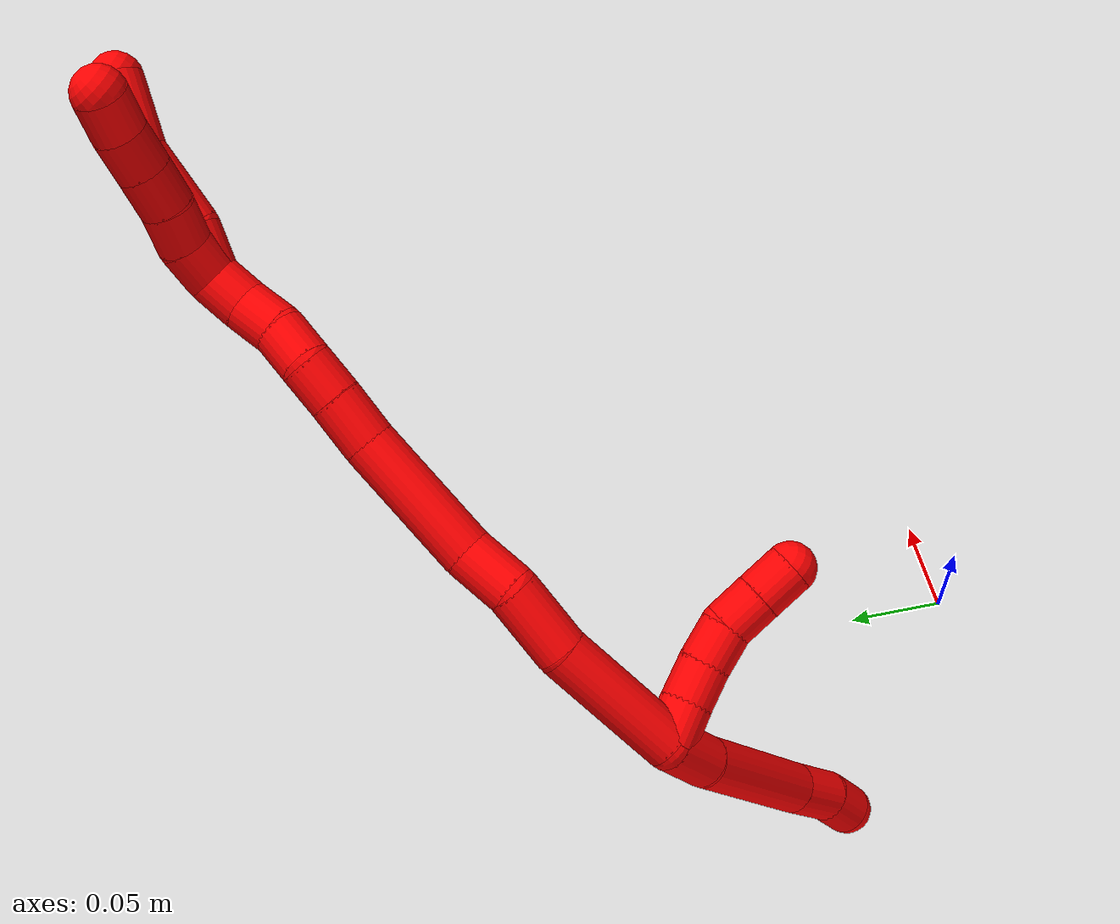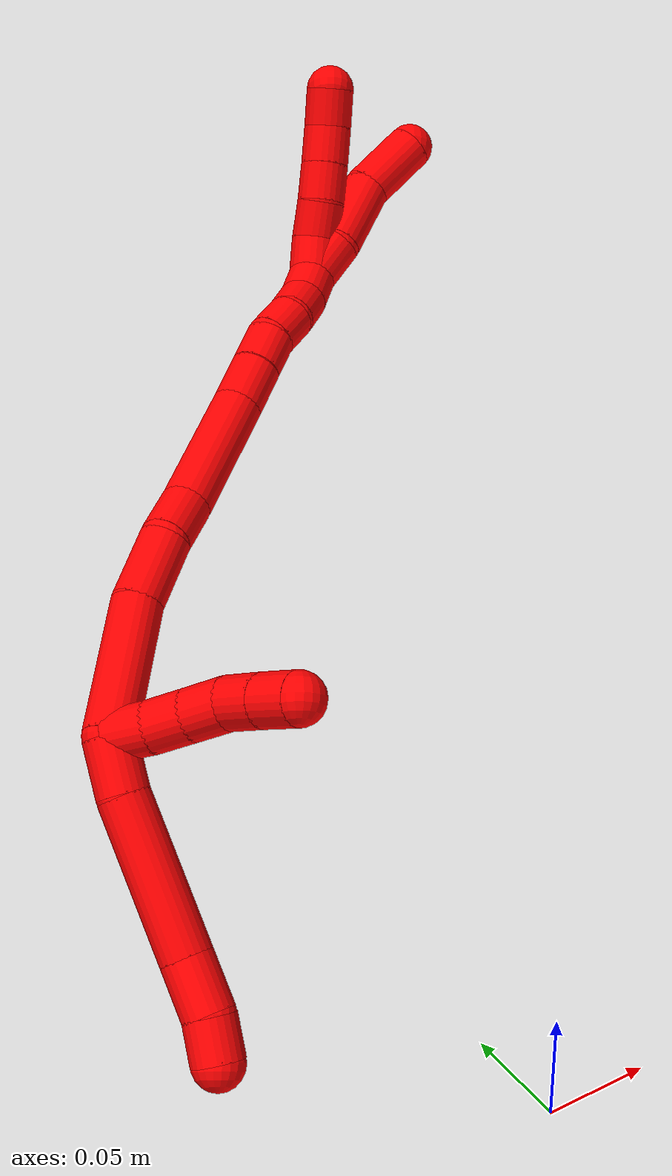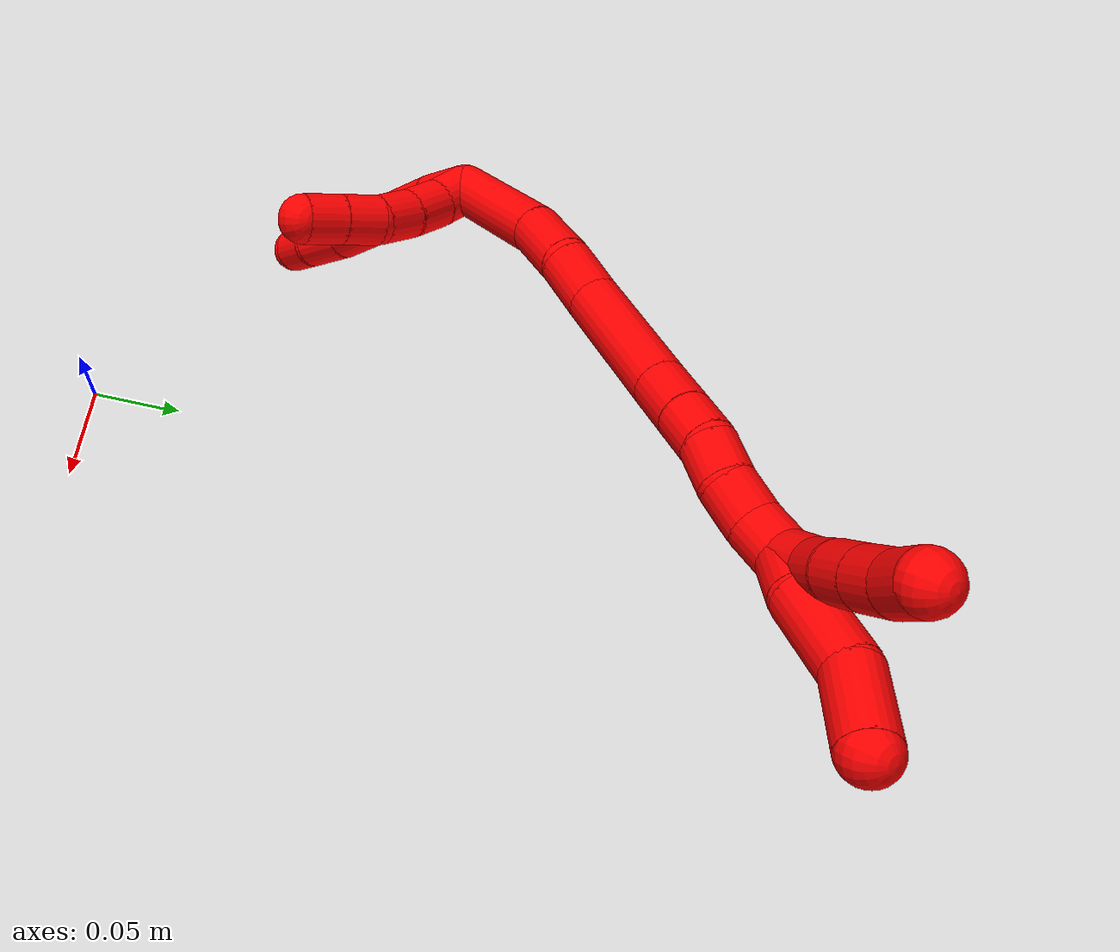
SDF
<sdf version="1.7">
 <world name="default">
  <model name="2">
   <static>0</static>
   <link name="2">
    <collision name="collision-cylinder-e_1_2_8">
     <pose>0.003269 0.001937 -0.01307 -2.99444 0.242573 -2.0538</pose>
     <geometry><cylinder><radius>0.0125</radius><length>0.027223</length></cylinder></geometry>
     <surface>
      <friction><ode><mu>1.16</mu><mu2>1.16</mu2><slip1>0</slip1><slip2>0</slip2></ode></friction>
      <contact><ode><kp>1e+06</kp><kd>1</kd><max_vel>0</max_vel><min_depth>0.001</min_depth></ode></contact>
     </surface>
    </collision>
    <visual name="visual-cylinder-e_1_2_8">
     <pose>0.003269 0.001937 -0.01307 -2.99444 0.242573 -2.0538</pose>
     <geometry><cylinder><radius>0.0125</radius><length>0.027223</length></cylinder></geometry>
     <material><ambient>1 0 0 1</ambient></material>
    </visual>
    <collision name="collision-cylinder-e_2_8_9">
     <pose>0.019951 0.011601 -0.060707 -2.92168 0.36197 -2.05586</pose>
     <geometry><cylinder><radius>0.0125</radius><length>0.075748</length></cylinder></geometry>
     <surface>
      <friction><ode><mu>1.16</mu><mu2>1.16</mu2><slip1>0</slip1><slip2>0</slip2></ode></friction>
      <contact><ode><kp>1e+06</kp><kd>1</kd><max_vel>0</max_vel><min_depth>0.001</min_depth></ode></contact>
     </surface>
    </collision>
    <visual name="visual-cylinder-e_2_8_9">
     <pose>0.019951 0.011601 -0.060707 -2.92168 0.36197 -2.05586</pose>
     <geometry><cylinder><radius>0.0125</radius><length>0.075748</length></cylinder></geometry>
     <material><ambient>1 0 0 1</ambient></material>
    </visual>
    <collision name="collision-cylinder-e_3_9_10">
     <pose>0.038379 0.02064 -0.107618 -3.03569 0.384009 -2.60925</pose>
     <geometry><cylinder><radius>0.0125</radius><length>0.026779</length></cylinder></geometry>
     <surface>
      <friction><ode><mu>1.16</mu><mu2>1.16</mu2><slip1>0</slip1><slip2>0</slip2></ode></friction>
      <contact><ode><kp>1e+06</kp><kd>1</kd><max_vel>0</max_vel><min_depth>0.001</min_depth></ode></contact>
     </surface>
    </collision>
    <visual name="visual-cylinder-e_3_9_10">
     <pose>0.038379 0.02064 -0.107618 -3.03569 0.384009 -2.60925</pose>
     <geometry><cylinder><radius>0.0125</radius><length>0.026779</length></cylinder></geometry>
     <material><ambient>1 0 0 1</ambient></material>
    </visual>
    <collision name="collision-cylinder-e_4_10_6">
     <pose>0.045256 0.023613 -0.129777 -2.97397 0.184815 -1.66878</pose>
     <geometry><cylinder><radius>0.0125</radius><length>0.02025</length></cylinder></geometry>
     <surface>
      <friction><ode><mu>1.16</mu><mu2>1.16</mu2><slip1>0</slip1><slip2>0</slip2></ode></friction>
      <contact><ode><kp>1e+06</kp><kd>1</kd><max_vel>0</max_vel><min_depth>0.001</min_depth></ode></contact>
     </surface>
    </collision>
    <visual name="visual-cylinder-e_4_10_6">
     <pose>0.045256 0.023613 -0.129777 -2.97397 0.184815 -1.66878</pose>
     <geometry><cylinder><radius>0.0125</radius><length>0.02025</length></cylinder></geometry>
     <material><ambient>1 0 0 1</ambient></material>
    </visual>
    <collision name="collision-cylinder-e_1_2_11">
     <pose>0.009767 -0.001557 0.001475 0.812396 1.35461 0.666046</pose>
     <geometry><cylinder><radius>0.0125</radius><length>0.02</length></cylinder></geometry>
     <surface>
      <friction><ode><mu>1.16</mu><mu2>1.16</mu2><slip1>0</slip1><slip2>0</slip2></ode></friction>
      <contact><ode><kp>1e+06</kp><kd>1</kd><max_vel>0</max_vel><min_depth>0.001</min_depth></ode></contact>
     </surface>
    </collision>
    <visual name="visual-cylinder-e_1_2_11">
     <pose>0.009767 -0.001557 0.001475 0.812396 1.35461 0.666046</pose>
     <geometry><cylinder><radius>0.0125</radius><length>0.02</length></cylinder></geometry>
     <material><ambient>1 0 0 1</ambient></material>
    </visual>
    <collision name="collision-cylinder-e_2_11_12">
     <pose>0.028979 -0.005823 0.004812 0.968794 1.23594 0.715888</pose>
     <geometry><cylinder><radius>0.0125</radius><length>0.02</length></cylinder></geometry>
     <surface>
      <friction><ode><mu>1.16</mu><mu2>1.16</mu2><slip1>0</slip1><slip2>0</slip2></ode></friction>
      <contact><ode><kp>1e+06</kp><kd>1</kd><max_vel>0</max_vel><min_depth>0.001</min_depth></ode></contact>
     </surface>
    </collision>
    <visual name="visual-cylinder-e_2_11_12">
     <pose>0.028979 -0.005823 0.004812 0.968794 1.23594 0.715888</pose>
     <geometry><cylinder><radius>0.0125</radius><length>0.02</length></cylinder></geometry>
     <material><ambient>1 0 0 1</ambient></material>
    </visual>
    <collision name="collision-cylinder-e_3_12_13">
     <pose>0.047571 -0.012268 0.008209 1.18069 1.15488 0.823224</pose>
     <geometry><cylinder><radius>0.0125</radius><length>0.02</length></cylinder></geometry>
     <surface>
      <friction><ode><mu>1.16</mu><mu2>1.16</mu2><slip1>0</slip1><slip2>0</slip2></ode></friction>
      <contact><ode><kp>1e+06</kp><kd>1</kd><max_vel>0</max_vel><min_depth>0.001</min_depth></ode></contact>
     </surface>
    </collision>
    <visual name="visual-cylinder-e_3_12_13">
     <pose>0.047571 -0.012268 0.008209 1.18069 1.15488 0.823224</pose>
     <geometry><cylinder><radius>0.0125</radius><length>0.02</length></cylinder></geometry>
     <material><ambient>1 0 0 1</ambient></material>
    </visual>
    <collision name="collision-cylinder-e_4_13_14">
     <pose>0.065187 -0.02125 0.008862 1.73762 1.00999 1.15791</pose>
     <geometry><cylinder><radius>0.0125</radius><length>0.02</length></cylinder></geometry>
     <surface>
      <friction><ode><mu>1.16</mu><mu2>1.16</mu2><slip1>0</slip1><slip2>0</slip2></ode></friction>
      <contact><ode><kp>1e+06</kp><kd>1</kd><max_vel>0</max_vel><min_depth>0.001</min_depth></ode></contact>
     </surface>
    </collision>
    <visual name="visual-cylinder-e_4_13_14">
     <pose>0.065187 -0.02125 0.008862 1.73762 1.00999 1.15791</pose>
     <geometry><cylinder><radius>0.0125</radius><length>0.02</length></cylinder></geometry>
     <material><ambient>1 0 0 1</ambient></material>
    </visual>
    <collision name="collision-cylinder-e_5_14_5">
     <pose>0.08216 -0.03165 0.006937 1.77038 1.01699 1.1963</pose>
     <geometry><cylinder><radius>0.0125</radius><length>0.02</length></cylinder></geometry>
     <surface>
      <friction><ode><mu>1.16</mu><mu2>1.16</mu2><slip1>0</slip1><slip2>0</slip2></ode></friction>
      <contact><ode><kp>1e+06</kp><kd>1</kd><max_vel>0</max_vel><min_depth>0.001</min_depth></ode></contact>
     </surface>
    </collision>
    <visual name="visual-cylinder-e_5_14_5">
     <pose>0.08216 -0.03165 0.006937 1.77038 1.01699 1.1963</pose>
     <geometry><cylinder><radius>0.0125</radius><length>0.02</length></cylinder></geometry>
     <material><ambient>1 0 0 1</ambient></material>
    </visual>
    <collision name="collision-cylinder-e_1_2_15">
     <pose>0.00385 0.006798 0.032776 -0.204503 0.114514 -0.011763</pose>
     <geometry><cylinder><radius>0.0125</radius><length>0.067388</length></cylinder></geometry>
     <surface>
      <friction><ode><mu>1.16</mu><mu2>1.16</mu2><slip1>0</slip1><slip2>0</slip2></ode></friction>
      <contact><ode><kp>1e+06</kp><kd>1</kd><max_vel>0</max_vel><min_depth>0.001</min_depth></ode></contact>
     </surface>
    </collision>
    <visual name="visual-cylinder-e_1_2_15">
     <pose>0.00385 0.006798 0.032776 -0.204503 0.114514 -0.011763</pose>
     <geometry><cylinder><radius>0.0125</radius><length>0.067388</length></cylinder></geometry>
     <material><ambient>1 0 0 1</ambient></material>
    </visual>
    <collision name="collision-cylinder-e_2_15_16">
     <pose>0.01309 0.017244 0.081931 -0.219189 0.310771 -0.03447</pose>
     <geometry><cylinder><radius>0.0125</radius><length>0.035251</length></cylinder></geometry>
     <surface>
      <friction><ode><mu>1.16</mu><mu2>1.16</mu2><slip1>0</slip1><slip2>0</slip2></ode></friction>
      <contact><ode><kp>1e+06</kp><kd>1</kd><max_vel>0</max_vel><min_depth>0.001</min_depth></ode></contact>
     </surface>
    </collision>
    <visual name="visual-cylinder-e_2_15_16">
     <pose>0.01309 0.017244 0.081931 -0.219189 0.310771 -0.03447</pose>
     <geometry><cylinder><radius>0.0125</radius><length>0.035251</length></cylinder></geometry>
     <material><ambient>1 0 0 1</ambient></material>
    </visual>
    <collision name="collision-cylinder-e_3_16_17">
     <pose>0.021823 0.027715 0.109131 -0.562523 0.255705 -0.07425</pose>
     <geometry><cylinder><radius>0.0125</radius><length>0.026442</length></cylinder></geometry>
     <surface>
      <friction><ode><mu>1.16</mu><mu2>1.16</mu2><slip1>0</slip1><slip2>0</slip2></ode></friction>
      <contact><ode><kp>1e+06</kp><kd>1</kd><max_vel>0</max_vel><min_depth>0.001</min_depth></ode></contact>
     </surface>
    </collision>
    <visual name="visual-cylinder-e_3_16_17">
     <pose>0.021823 0.027715 0.109131 -0.562523 0.255705 -0.07425</pose>
     <geometry><cylinder><radius>0.0125</radius><length>0.026442</length></cylinder></geometry>
     <material><ambient>1 0 0 1</ambient></material>
    </visual>
    <collision name="collision-cylinder-e_4_17_18">
     <pose>0.0354 0.045217 0.149327 -0.348696 0.316358 -0.056177</pose>
     <geometry><cylinder><radius>0.0125</radius><length>0.065779</length></cylinder></geometry>
     <surface>
      <friction><ode><mu>1.16</mu><mu2>1.16</mu2><slip1>0</slip1><slip2>0</slip2></ode></friction>
      <contact><ode><kp>1e+06</kp><kd>1</kd><max_vel>0</max_vel><min_depth>0.001</min_depth></ode></contact>
     </surface>
    </collision>
    <visual name="visual-cylinder-e_4_17_18">
     <pose>0.0354 0.045217 0.149327 -0.348696 0.316358 -0.056177</pose>
     <geometry><cylinder><radius>0.0125</radius><length>0.065779</length></cylinder></geometry>
     <material><ambient>1 0 0 1</ambient></material>
    </visual>
    <collision name="collision-cylinder-e_5_18_19">
     <pose>0.04982 0.058592 0.18998 -0.234652 0.346658 -0.041268</pose>
     <geometry><cylinder><radius>0.0125</radius><length>0.024655</length></cylinder></geometry>
     <surface>
      <friction><ode><mu>1.16</mu><mu2>1.16</mu2><slip1>0</slip1><slip2>0</slip2></ode></friction>
      <contact><ode><kp>1e+06</kp><kd>1</kd><max_vel>0</max_vel><min_depth>0.001</min_depth></ode></contact>
     </surface>
    </collision>
    <visual name="visual-cylinder-e_5_18_19">
     <pose>0.04982 0.058592 0.18998 -0.234652 0.346658 -0.041268</pose>
     <geometry><cylinder><radius>0.0125</radius><length>0.024655</length></cylinder></geometry>
     <material><ambient>1 0 0 1</ambient></material>
    </visual>
    <collision name="collision-cylinder-e_6_19_20">
     <pose>0.057315 0.063923 0.210505 -0.277522 0.331225 -0.046678</pose>
     <geometry><cylinder><radius>0.0125</radius><length>0.020338</length></cylinder></geometry>
     <surface>
      <friction><ode><mu>1.16</mu><mu2>1.16</mu2><slip1>0</slip1><slip2>0</slip2></ode></friction>
      <contact><ode><kp>1e+06</kp><kd>1</kd><max_vel>0</max_vel><min_depth>0.001</min_depth></ode></contact>
     </surface>
    </collision>
    <visual name="visual-cylinder-e_6_19_20">
     <pose>0.057315 0.063923 0.210505 -0.277522 0.331225 -0.046678</pose>
     <geometry><cylinder><radius>0.0125</radius><length>0.020338</length></cylinder></geometry>
     <material><ambient>1 0 0 1</ambient></material>
    </visual>
    <collision name="collision-cylinder-e_7_20_21">
     <pose>0.064959 0.071296 0.227505 -0.548689 0.44533 -0.127275</pose>
     <geometry><cylinder><radius>0.0125</radius><length>0.020134</length></cylinder></geometry>
     <surface>
      <friction><ode><mu>1.16</mu><mu2>1.16</mu2><slip1>0</slip1><slip2>0</slip2></ode></friction>
      <contact><ode><kp>1e+06</kp><kd>1</kd><max_vel>0</max_vel><min_depth>0.001</min_depth></ode></contact>
     </surface>
    </collision>
    <visual name="visual-cylinder-e_7_20_21">
     <pose>0.064959 0.071296 0.227505 -0.548689 0.44533 -0.127275</pose>
     <geometry><cylinder><radius>0.0125</radius><length>0.020134</length></cylinder></geometry>
     <material><ambient>1 0 0 1</ambient></material>
    </visual>
    <collision name="collision-cylinder-e_8_21_22">
     <pose>0.071691 0.082106 0.24284 -0.675148 0.241777 -0.08523</pose>
     <geometry><cylinder><radius>0.0125</radius><length>0.020011</length></cylinder></geometry>
     <surface>
      <friction><ode><mu>1.16</mu><mu2>1.16</mu2><slip1>0</slip1><slip2>0</slip2></ode></friction>
      <contact><ode><kp>1e+06</kp><kd>1</kd><max_vel>0</max_vel><min_depth>0.001</min_depth></ode></contact>
     </surface>
    </collision>
    <visual name="visual-cylinder-e_8_21_22">
     <pose>0.071691 0.082106 0.24284 -0.675148 0.241777 -0.08523</pose>
     <geometry><cylinder><radius>0.0125</radius><length>0.020011</length></cylinder></geometry>
     <material><ambient>1 0 0 1</ambient></material>
    </visual>
    <collision name="collision-cylinder-e_9_22_1">
     <pose>0.076161 0.092253 0.259317 -0.429727 0.208976 -0.045764</pose>
     <geometry><cylinder><radius>0.0125</radius><length>0.020002</length></cylinder></geometry>
     <surface>
      <friction><ode><mu>1.16</mu><mu2>1.16</mu2><slip1>0</slip1><slip2>0</slip2></ode></friction>
      <contact><ode><kp>1e+06</kp><kd>1</kd><max_vel>0</max_vel><min_depth>0.001</min_depth></ode></contact>
     </surface>
    </collision>
    <visual name="visual-cylinder-e_9_22_1">
     <pose>0.076161 0.092253 0.259317 -0.429727 0.208976 -0.045764</pose>
     <geometry><cylinder><radius>0.0125</radius><length>0.020002</length></cylinder></geometry>
     <material><ambient>1 0 0 1</ambient></material>
    </visual>
    <collision name="collision-cylinder-e_1_1_23">
     <pose>0.084874 0.097217 0.277838 -0.091936 0.601703 -0.028543</pose>
     <geometry><cylinder><radius>0.0125</radius><length>0.023455</length></cylinder></geometry>
     <surface>
      <friction><ode><mu>1.16</mu><mu2>1.16</mu2><slip1>0</slip1><slip2>0</slip2></ode></friction>
      <contact><ode><kp>1e+06</kp><kd>1</kd><max_vel>0</max_vel><min_depth>0.001</min_depth></ode></contact>
     </surface>
    </collision>
    <visual name="visual-cylinder-e_1_1_23">
     <pose>0.084874 0.097217 0.277838 -0.091936 0.601703 -0.028543</pose>
     <geometry><cylinder><radius>0.0125</radius><length>0.023455</length></cylinder></geometry>
     <material><ambient>1 0 0 1</ambient></material>
    </visual>
    <collision name="collision-cylinder-e_2_23_24">
     <pose>0.099072 0.10226 0.305705 -0.223991 0.384017 -0.043721</pose>
     <geometry><cylinder><radius>0.0125</radius><length>0.040356</length></cylinder></geometry>
     <surface>
      <friction><ode><mu>1.16</mu><mu2>1.16</mu2><slip1>0</slip1><slip2>0</slip2></ode></friction>
      <contact><ode><kp>1e+06</kp><kd>1</kd><max_vel>0</max_vel><min_depth>0.001</min_depth></ode></contact>
     </surface>
    </collision>
    <visual name="visual-cylinder-e_2_23_24">
     <pose>0.099072 0.10226 0.305705 -0.223991 0.384017 -0.043721</pose>
     <geometry><cylinder><radius>0.0125</radius><length>0.040356</length></cylinder></geometry>
     <material><ambient>1 0 0 1</ambient></material>
    </visual>
    <collision name="collision-cylinder-e_3_24_4">
     <pose>0.118475 0.10901 0.337379 -0.190755 0.713524 -0.071283</pose>
     <geometry><cylinder><radius>0.0125</radius><length>0.03619</length></cylinder></geometry>
     <surface>
      <friction><ode><mu>1.16</mu><mu2>1.16</mu2><slip1>0</slip1><slip2>0</slip2></ode></friction>
      <contact><ode><kp>1e+06</kp><kd>1</kd><max_vel>0</max_vel><min_depth>0.001</min_depth></ode></contact>
     </surface>
    </collision>
    <visual name="visual-cylinder-e_3_24_4">
     <pose>0.118475 0.10901 0.337379 -0.190755 0.713524 -0.071283</pose>
     <geometry><cylinder><radius>0.0125</radius><length>0.03619</length></cylinder></geometry>
     <material><ambient>1 0 0 1</ambient></material>
    </visual>
    <collision name="collision-cylinder-e_1_1_25">
     <pose>0.079199 0.094833 0.278051 0.150902 0.096437 0.007296</pose>
     <geometry><cylinder><radius>0.0125</radius><length>0.02</length></cylinder></geometry>
     <surface>
      <friction><ode><mu>1.16</mu><mu2>1.16</mu2><slip1>0</slip1><slip2>0</slip2></ode></friction>
      <contact><ode><kp>1e+06</kp><kd>1</kd><max_vel>0</max_vel><min_depth>0.001</min_depth></ode></contact>
     </surface>
    </collision>
    <visual name="visual-cylinder-e_1_1_25">
     <pose>0.079199 0.094833 0.278051 0.150902 0.096437 0.007296</pose>
     <geometry><cylinder><radius>0.0125</radius><length>0.02</length></cylinder></geometry>
     <material><ambient>1 0 0 1</ambient></material>
    </visual>
    <collision name="collision-cylinder-e_2_25_26">
     <pose>0.082204 0.089229 0.296777 0.433059 0.205682 0.045398</pose>
     <geometry><cylinder><radius>0.0125</radius><length>0.02</length></cylinder></geometry>
     <surface>
      <friction><ode><mu>1.16</mu><mu2>1.16</mu2><slip1>0</slip1><slip2>0</slip2></ode></friction>
      <contact><ode><kp>1e+06</kp><kd>1</kd><max_vel>0</max_vel><min_depth>0.001</min_depth></ode></contact>
     </surface>
    </collision>
    <visual name="visual-cylinder-e_2_25_26">
     <pose>0.082204 0.089229 0.296777 0.433059 0.205682 0.045398</pose>
     <geometry><cylinder><radius>0.0125</radius><length>0.02</length></cylinder></geometry>
     <material><ambient>1 0 0 1</ambient></material>
    </visual>
    <collision name="collision-cylinder-e_3_26_27">
     <pose>0.08568 0.082031 0.315065 0.317552 0.143803 0.023065</pose>
     <geometry><cylinder><radius>0.0125</radius><length>0.02</length></cylinder></geometry>
     <surface>
      <friction><ode><mu>1.16</mu><mu2>1.16</mu2><slip1>0</slip1><slip2>0</slip2></ode></friction>
      <contact><ode><kp>1e+06</kp><kd>1</kd><max_vel>0</max_vel><min_depth>0.001</min_depth></ode></contact>
     </surface>
    </collision>
    <visual name="visual-cylinder-e_3_26_27">
     <pose>0.08568 0.082031 0.315065 0.317552 0.143803 0.023065</pose>
     <geometry><cylinder><radius>0.0125</radius><length>0.02</length></cylinder></geometry>
     <material><ambient>1 0 0 1</ambient></material>
    </visual>
    <collision name="collision-cylinder-e_4_27_28">
     <pose>0.088369 0.075798 0.333877 0.322288 0.12599 0.020506</pose>
     <geometry><cylinder><radius>0.0125</radius><length>0.02</length></cylinder></geometry>
     <surface>
      <friction><ode><mu>1.16</mu><mu2>1.16</mu2><slip1>0</slip1><slip2>0</slip2></ode></friction>
      <contact><ode><kp>1e+06</kp><kd>1</kd><max_vel>0</max_vel><min_depth>0.001</min_depth></ode></contact>
     </surface>
    </collision>
    <visual name="visual-cylinder-e_4_27_28">
     <pose>0.088369 0.075798 0.333877 0.322288 0.12599 0.020506</pose>
     <geometry><cylinder><radius>0.0125</radius><length>0.02</length></cylinder></geometry>
     <material><ambient>1 0 0 1</ambient></material>
    </visual>
    <collision name="collision-cylinder-e_5_28_3">
     <pose>0.09089 0.06801 0.352051 0.487409 0.126739 0.031553</pose>
     <geometry><cylinder><radius>0.0125</radius><length>0.02</length></cylinder></geometry>
     <surface>
      <friction><ode><mu>1.16</mu><mu2>1.16</mu2><slip1>0</slip1><slip2>0</slip2></ode></friction>
      <contact><ode><kp>1e+06</kp><kd>1</kd><max_vel>0</max_vel><min_depth>0.001</min_depth></ode></contact>
     </surface>
    </collision>
    <visual name="visual-cylinder-e_5_28_3">
     <pose>0.09089 0.06801 0.352051 0.487409 0.126739 0.031553</pose>
     <geometry><cylinder><radius>0.0125</radius><length>0.02</length></cylinder></geometry>
     <material><ambient>1 0 0 1</ambient></material>
    </visual>
    <collision name="collision-sphere-3">
     <pose>0.092154 0.063364 0.360816 0 -0 0</pose>
     <geometry><sphere><radius>0.0125</radius></sphere></geometry>
     <surface>
      <friction><ode><mu>1.16</mu><mu2>1.16</mu2><slip1>0</slip1><slip2>0</slip2></ode></friction>
      <contact><ode><kp>1e+06</kp><kd>1</kd><max_vel>0</max_vel><min_depth>0.001</min_depth></ode></contact>
     </surface>
    </collision>
    <visual name="visual-sphere-3">
     <pose>0.092154 0.063364 0.360816 0 -0 0</pose>
     <geometry><sphere><radius>0.0125</radius></sphere></geometry>
     <material><ambient>1 0 0 1</ambient></material>
    </visual>
    <collision name="collision-sphere-28">
     <pose>0.089626 0.072656 0.343287 0 -0 0</pose>
     <geometry><sphere><radius>0.0125</radius></sphere></geometry>
     <surface>
      <friction><ode><mu>1.16</mu><mu2>1.16</mu2><slip1>0</slip1><slip2>0</slip2></ode></friction>
      <contact><ode><kp>1e+06</kp><kd>1</kd><max_vel>0</max_vel><min_depth>0.001</min_depth></ode></contact>
     </surface>
    </collision>
    <visual name="visual-sphere-28">
     <pose>0.089626 0.072656 0.343287 0 -0 0</pose>
     <geometry><sphere><radius>0.0125</radius></sphere></geometry>
     <material><ambient>1 0 0 1</ambient></material>
    </visual>
    <collision name="collision-sphere-27">
     <pose>0.087113 0.07894 0.324467 0 -0 0</pose>
     <geometry><sphere><radius>0.0125</radius></sphere></geometry>
     <surface>
      <friction><ode><mu>1.16</mu><mu2>1.16</mu2><slip1>0</slip1><slip2>0</slip2></ode></friction>
      <contact><ode><kp>1e+06</kp><kd>1</kd><max_vel>0</max_vel><min_depth>0.001</min_depth></ode></contact>
     </surface>
    </collision>
    <visual name="visual-sphere-27">
     <pose>0.087113 0.07894 0.324467 0 -0 0</pose>
     <geometry><sphere><radius>0.0125</radius></sphere></geometry>
     <material><ambient>1 0 0 1</ambient></material>
    </visual>
    <collision name="collision-sphere-26">
     <pose>0.084246 0.085121 0.305663 0 -0 0</pose>
     <geometry><sphere><radius>0.0125</radius></sphere></geometry>
     <surface>
      <friction><ode><mu>1.16</mu><mu2>1.16</mu2><slip1>0</slip1><slip2>0</slip2></ode></friction>
      <contact><ode><kp>1e+06</kp><kd>1</kd><max_vel>0</max_vel><min_depth>0.001</min_depth></ode></contact>
     </surface>
    </collision>
    <visual name="visual-sphere-26">
     <pose>0.084246 0.085121 0.305663 0 -0 0</pose>
     <geometry><sphere><radius>0.0125</radius></sphere></geometry>
     <material><ambient>1 0 0 1</ambient></material>
    </visual>
    <collision name="collision-sphere-25">
     <pose>0.080162 0.093337 0.287892 0 -0 0</pose>
     <geometry><sphere><radius>0.0125</radius></sphere></geometry>
     <surface>
      <friction><ode><mu>1.16</mu><mu2>1.16</mu2><slip1>0</slip1><slip2>0</slip2></ode></friction>
      <contact><ode><kp>1e+06</kp><kd>1</kd><max_vel>0</max_vel><min_depth>0.001</min_depth></ode></contact>
     </surface>
    </collision>
    <visual name="visual-sphere-25">
     <pose>0.080162 0.093337 0.287892 0 -0 0</pose>
     <geometry><sphere><radius>0.0125</radius></sphere></geometry>
     <material><ambient>1 0 0 1</ambient></material>
    </visual>
    <collision name="collision-sphere-4">
     <pose>0.130318 0.111603 0.350812 0 -0 0</pose>
     <geometry><sphere><radius>0.0125</radius></sphere></geometry>
     <surface>
      <friction><ode><mu>1.16</mu><mu2>1.16</mu2><slip1>0</slip1><slip2>0</slip2></ode></friction>
      <contact><ode><kp>1e+06</kp><kd>1</kd><max_vel>0</max_vel><min_depth>0.001</min_depth></ode></contact>
     </surface>
    </collision>
    <visual name="visual-sphere-4">
     <pose>0.130318 0.111603 0.350812 0 -0 0</pose>
     <geometry><sphere><radius>0.0125</radius></sphere></geometry>
     <material><ambient>1 0 0 1</ambient></material>
    </visual>
    <collision name="collision-sphere-24">
     <pose>0.106632 0.106416 0.323946 0 -0 0</pose>
     <geometry><sphere><radius>0.0125</radius></sphere></geometry>
     <surface>
      <friction><ode><mu>1.16</mu><mu2>1.16</mu2><slip1>0</slip1><slip2>0</slip2></ode></friction>
      <contact><ode><kp>1e+06</kp><kd>1</kd><max_vel>0</max_vel><min_depth>0.001</min_depth></ode></contact>
     </surface>
    </collision>
    <visual name="visual-sphere-24">
     <pose>0.106632 0.106416 0.323946 0 -0 0</pose>
     <geometry><sphere><radius>0.0125</radius></sphere></geometry>
     <material><ambient>1 0 0 1</ambient></material>
    </visual>
    <collision name="collision-sphere-23">
     <pose>0.091512 0.098105 0.287465 0 -0 0</pose>
     <geometry><sphere><radius>0.0125</radius></sphere></geometry>
     <surface>
      <friction><ode><mu>1.16</mu><mu2>1.16</mu2><slip1>0</slip1><slip2>0</slip2></ode></friction>
      <contact><ode><kp>1e+06</kp><kd>1</kd><max_vel>0</max_vel><min_depth>0.001</min_depth></ode></contact>
     </surface>
    </collision>
    <visual name="visual-sphere-23">
     <pose>0.091512 0.098105 0.287465 0 -0 0</pose>
     <geometry><sphere><radius>0.0125</radius></sphere></geometry>
     <material><ambient>1 0 0 1</ambient></material>
    </visual>
    <collision name="collision-sphere-1">
     <pose>0.078236 0.096329 0.268211 0 -0 0</pose>
     <geometry><sphere><radius>0.0125</radius></sphere></geometry>
     <surface>
      <friction><ode><mu>1.16</mu><mu2>1.16</mu2><slip1>0</slip1><slip2>0</slip2></ode></friction>
      <contact><ode><kp>1e+06</kp><kd>1</kd><max_vel>0</max_vel><min_depth>0.001</min_depth></ode></contact>
     </surface>
    </collision>
    <visual name="visual-sphere-1">
     <pose>0.078236 0.096329 0.268211 0 -0 0</pose>
     <geometry><sphere><radius>0.0125</radius></sphere></geometry>
     <material><ambient>1 0 0 1</ambient></material>
    </visual>
    <collision name="collision-sphere-22">
     <pose>0.074086 0.088178 0.250423 0 -0 0</pose>
     <geometry><sphere><radius>0.0125</radius></sphere></geometry>
     <surface>
      <friction><ode><mu>1.16</mu><mu2>1.16</mu2><slip1>0</slip1><slip2>0</slip2></ode></friction>
      <contact><ode><kp>1e+06</kp><kd>1</kd><max_vel>0</max_vel><min_depth>0.001</min_depth></ode></contact>
     </surface>
    </collision>
    <visual name="visual-sphere-22">
     <pose>0.074086 0.088178 0.250423 0 -0 0</pose>
     <geometry><sphere><radius>0.0125</radius></sphere></geometry>
     <material><ambient>1 0 0 1</ambient></material>
    </visual>
    <collision name="collision-sphere-21">
     <pose>0.069295 0.076034 0.235256 0 -0 0</pose>
     <geometry><sphere><radius>0.0125</radius></sphere></geometry>
     <surface>
      <friction><ode><mu>1.16</mu><mu2>1.16</mu2><slip1>0</slip1><slip2>0</slip2></ode></friction>
      <contact><ode><kp>1e+06</kp><kd>1</kd><max_vel>0</max_vel><min_depth>0.001</min_depth></ode></contact>
     </surface>
    </collision>
    <visual name="visual-sphere-21">
     <pose>0.069295 0.076034 0.235256 0 -0 0</pose>
     <geometry><sphere><radius>0.0125</radius></sphere></geometry>
     <material><ambient>1 0 0 1</ambient></material>
    </visual>
    <collision name="collision-sphere-11">
     <pose>0.019534 -0.003114 0.002951 0 -0 0</pose>
     <geometry><sphere><radius>0.0125</radius></sphere></geometry>
     <surface>
      <friction><ode><mu>1.16</mu><mu2>1.16</mu2><slip1>0</slip1><slip2>0</slip2></ode></friction>
      <contact><ode><kp>1e+06</kp><kd>1</kd><max_vel>0</max_vel><min_depth>0.001</min_depth></ode></contact>
     </surface>
    </collision>
    <visual name="visual-sphere-11">
     <pose>0.019534 -0.003114 0.002951 0 -0 0</pose>
     <geometry><sphere><radius>0.0125</radius></sphere></geometry>
     <material><ambient>1 0 0 1</ambient></material>
    </visual>
    <collision name="collision-sphere-6">
     <pose>0.047116 0.025273 -0.13959 0 -0 0</pose>
     <geometry><sphere><radius>0.0125</radius></sphere></geometry>
     <surface>
      <friction><ode><mu>1.16</mu><mu2>1.16</mu2><slip1>0</slip1><slip2>0</slip2></ode></friction>
      <contact><ode><kp>1e+06</kp><kd>1</kd><max_vel>0</max_vel><min_depth>0.001</min_depth></ode></contact>
     </surface>
    </collision>
    <visual name="visual-sphere-6">
     <pose>0.047116 0.025273 -0.13959 0 -0 0</pose>
     <geometry><sphere><radius>0.0125</radius></sphere></geometry>
     <material><ambient>1 0 0 1</ambient></material>
    </visual>
    <collision name="collision-sphere-10">
     <pose>0.043395 0.021952 -0.119963 0 -0 0</pose>
     <geometry><sphere><radius>0.0125</radius></sphere></geometry>
     <surface>
      <friction><ode><mu>1.16</mu><mu2>1.16</mu2><slip1>0</slip1><slip2>0</slip2></ode></friction>
      <contact><ode><kp>1e+06</kp><kd>1</kd><max_vel>0</max_vel><min_depth>0.001</min_depth></ode></contact>
     </surface>
    </collision>
    <visual name="visual-sphere-10">
     <pose>0.043395 0.021952 -0.119963 0 -0 0</pose>
     <geometry><sphere><radius>0.0125</radius></sphere></geometry>
     <material><ambient>1 0 0 1</ambient></material>
    </visual>
    <collision name="collision-sphere-9">
     <pose>0.033363 0.019328 -0.095274 0 -0 0</pose>
     <geometry><sphere><radius>0.0125</radius></sphere></geometry>
     <surface>
      <friction><ode><mu>1.16</mu><mu2>1.16</mu2><slip1>0</slip1><slip2>0</slip2></ode></friction>
      <contact><ode><kp>1e+06</kp><kd>1</kd><max_vel>0</max_vel><min_depth>0.001</min_depth></ode></contact>
     </surface>
    </collision>
    <visual name="visual-sphere-9">
     <pose>0.033363 0.019328 -0.095274 0 -0 0</pose>
     <geometry><sphere><radius>0.0125</radius></sphere></geometry>
     <material><ambient>1 0 0 1</ambient></material>
    </visual>
    <collision name="collision-sphere-2">
     <geometry><sphere><radius>0.0125</radius></sphere></geometry>
     <surface>
      <friction><ode><mu>1.16</mu><mu2>1.16</mu2><slip1>0</slip1><slip2>0</slip2></ode></friction>
      <contact><ode><kp>1e+06</kp><kd>1</kd><max_vel>0</max_vel><min_depth>0.001</min_depth></ode></contact>
     </surface>
    </collision>
    <visual name="visual-sphere-2">
     <geometry><sphere><radius>0.0125</radius></sphere></geometry>
     <material><ambient>1 0 0 1</ambient></material>
    </visual>
    <collision name="collision-sphere-19">
     <pose>0.054008 0.061288 0.201257 0 -0 0</pose>
     <geometry><sphere><radius>0.0125</radius></sphere></geometry>
     <surface>
      <friction><ode><mu>1.16</mu><mu2>1.16</mu2><slip1>0</slip1><slip2>0</slip2></ode></friction>
      <contact><ode><kp>1e+06</kp><kd>1</kd><max_vel>0</max_vel><min_depth>0.001</min_depth></ode></contact>
     </surface>
    </collision>
    <visual name="visual-sphere-19">
     <pose>0.054008 0.061288 0.201257 0 -0 0</pose>
     <geometry><sphere><radius>0.0125</radius></sphere></geometry>
     <material><ambient>1 0 0 1</ambient></material>
    </visual>
    <collision name="collision-sphere-8">
     <pose>0.006539 0.003875 -0.02614 0 -0 0</pose>
     <geometry><sphere><radius>0.0125</radius></sphere></geometry>
     <surface>
      <friction><ode><mu>1.16</mu><mu2>1.16</mu2><slip1>0</slip1><slip2>0</slip2></ode></friction>
      <contact><ode><kp>1e+06</kp><kd>1</kd><max_vel>0</max_vel><min_depth>0.001</min_depth></ode></contact>
     </surface>
    </collision>
    <visual name="visual-sphere-8">
     <pose>0.006539 0.003875 -0.02614 0 -0 0</pose>
     <geometry><sphere><radius>0.0125</radius></sphere></geometry>
     <material><ambient>1 0 0 1</ambient></material>
    </visual>
    <collision name="collision-sphere-12">
     <pose>0.038424 -0.008532 0.006673 0 -0 0</pose>
     <geometry><sphere><radius>0.0125</radius></sphere></geometry>
     <surface>
      <friction><ode><mu>1.16</mu><mu2>1.16</mu2><slip1>0</slip1><slip2>0</slip2></ode></friction>
      <contact><ode><kp>1e+06</kp><kd>1</kd><max_vel>0</max_vel><min_depth>0.001</min_depth></ode></contact>
     </surface>
    </collision>
    <visual name="visual-sphere-12">
     <pose>0.038424 -0.008532 0.006673 0 -0 0</pose>
     <geometry><sphere><radius>0.0125</radius></sphere></geometry>
     <material><ambient>1 0 0 1</ambient></material>
    </visual>
    <collision name="collision-sphere-13">
     <pose>0.056718 -0.016005 0.009746 0 -0 0</pose>
     <geometry><sphere><radius>0.0125</radius></sphere></geometry>
     <surface>
      <friction><ode><mu>1.16</mu><mu2>1.16</mu2><slip1>0</slip1><slip2>0</slip2></ode></friction>
      <contact><ode><kp>1e+06</kp><kd>1</kd><max_vel>0</max_vel><min_depth>0.001</min_depth></ode></contact>
     </surface>
    </collision>
    <visual name="visual-sphere-13">
     <pose>0.056718 -0.016005 0.009746 0 -0 0</pose>
     <geometry><sphere><radius>0.0125</radius></sphere></geometry>
     <material><ambient>1 0 0 1</ambient></material>
    </visual>
    <collision name="collision-sphere-14">
     <pose>0.073655 -0.026495 0.007979 0 -0 0</pose>
     <geometry><sphere><radius>0.0125</radius></sphere></geometry>
     <surface>
      <friction><ode><mu>1.16</mu><mu2>1.16</mu2><slip1>0</slip1><slip2>0</slip2></ode></friction>
      <contact><ode><kp>1e+06</kp><kd>1</kd><max_vel>0</max_vel><min_depth>0.001</min_depth></ode></contact>
     </surface>
    </collision>
    <visual name="visual-sphere-14">
     <pose>0.073655 -0.026495 0.007979 0 -0 0</pose>
     <geometry><sphere><radius>0.0125</radius></sphere></geometry>
     <material><ambient>1 0 0 1</ambient></material>
    </visual>
    <collision name="collision-sphere-5">
     <pose>0.090666 -0.036805 0.005894 0 -0 0</pose>
     <geometry><sphere><radius>0.0125</radius></sphere></geometry>
     <surface>
      <friction><ode><mu>1.16</mu><mu2>1.16</mu2><slip1>0</slip1><slip2>0</slip2></ode></friction>
      <contact><ode><kp>1e+06</kp><kd>1</kd><max_vel>0</max_vel><min_depth>0.001</min_depth></ode></contact>
     </surface>
    </collision>
    <visual name="visual-sphere-5">
     <pose>0.090666 -0.036805 0.005894 0 -0 0</pose>
     <geometry><sphere><radius>0.0125</radius></sphere></geometry>
     <material><ambient>1 0 0 1</ambient></material>
    </visual>
    <collision name="collision-sphere-15">
     <pose>0.0077 0.013596 0.065551 0 -0 0</pose>
     <geometry><sphere><radius>0.0125</radius></sphere></geometry>
     <surface>
      <friction><ode><mu>1.16</mu><mu2>1.16</mu2><slip1>0</slip1><slip2>0</slip2></ode></friction>
      <contact><ode><kp>1e+06</kp><kd>1</kd><max_vel>0</max_vel><min_depth>0.001</min_depth></ode></contact>
     </surface>
    </collision>
    <visual name="visual-sphere-15">
     <pose>0.0077 0.013596 0.065551 0 -0 0</pose>
     <geometry><sphere><radius>0.0125</radius></sphere></geometry>
     <material><ambient>1 0 0 1</ambient></material>
    </visual>
    <collision name="collision-sphere-16">
     <pose>0.018479 0.020893 0.098311 0 -0 0</pose>
     <geometry><sphere><radius>0.0125</radius></sphere></geometry>
     <surface>
      <friction><ode><mu>1.16</mu><mu2>1.16</mu2><slip1>0</slip1><slip2>0</slip2></ode></friction>
      <contact><ode><kp>1e+06</kp><kd>1</kd><max_vel>0</max_vel><min_depth>0.001</min_depth></ode></contact>
     </surface>
    </collision>
    <visual name="visual-sphere-16">
     <pose>0.018479 0.020893 0.098311 0 -0 0</pose>
     <geometry><sphere><radius>0.0125</radius></sphere></geometry>
     <material><ambient>1 0 0 1</ambient></material>
    </visual>
    <collision name="collision-sphere-17">
     <pose>0.025167 0.034537 0.119951 0 -0 0</pose>
     <geometry><sphere><radius>0.0125</radius></sphere></geometry>
     <surface>
      <friction><ode><mu>1.16</mu><mu2>1.16</mu2><slip1>0</slip1><slip2>0</slip2></ode></friction>
      <contact><ode><kp>1e+06</kp><kd>1</kd><max_vel>0</max_vel><min_depth>0.001</min_depth></ode></contact>
     </surface>
    </collision>
    <visual name="visual-sphere-17">
     <pose>0.025167 0.034537 0.119951 0 -0 0</pose>
     <geometry><sphere><radius>0.0125</radius></sphere></geometry>
     <material><ambient>1 0 0 1</ambient></material>
    </visual>
    <collision name="collision-sphere-18">
     <pose>0.045632 0.055896 0.178704 0 -0 0</pose>
     <geometry><sphere><radius>0.0125</radius></sphere></geometry>
     <surface>
      <friction><ode><mu>1.16</mu><mu2>1.16</mu2><slip1>0</slip1><slip2>0</slip2></ode></friction>
      <contact><ode><kp>1e+06</kp><kd>1</kd><max_vel>0</max_vel><min_depth>0.001</min_depth></ode></contact>
     </surface>
    </collision>
    <visual name="visual-sphere-18">
     <pose>0.045632 0.055896 0.178704 0 -0 0</pose>
     <geometry><sphere><radius>0.0125</radius></sphere></geometry>
     <material><ambient>1 0 0 1</ambient></material>
    </visual>
    <collision name="collision-sphere-20">
     <pose>0.060623 0.066557 0.219754 0 -0 0</pose>
     <geometry><sphere><radius>0.0125</radius></sphere></geometry>
     <surface>
      <friction><ode><mu>1.16</mu><mu2>1.16</mu2><slip1>0</slip1><slip2>0</slip2></ode></friction>
      <contact><ode><kp>1e+06</kp><kd>1</kd><max_vel>0</max_vel><min_depth>0.001</min_depth></ode></contact>
     </surface>
    </collision>
    <visual name="visual-sphere-20">
     <pose>0.060623 0.066557 0.219754 0 -0 0</pose>
     <geometry><sphere><radius>0.0125</radius></sphere></geometry>
     <material><ambient>1 0 0 1</ambient></material>
    </visual>
    <inertial>
     <pose>0.049743 0.042004 0.125491 0 -0 0</pose>
     <mass>0.75</mass>
     <inertia><ixx>5.2e-05</ixx><ixy>0</ixy><ixz>0</ixz><iyy>8.5e-05</iyy><iyz>0</iyz><izz>-4.8e-05</izz></inertia>
    </inertial>
   </link>
   <pose>-0.107447 0.190072 0.123604 -0.784506 -0.087086 -0.649658</pose>
  </model>
 </world>
</sdf>
